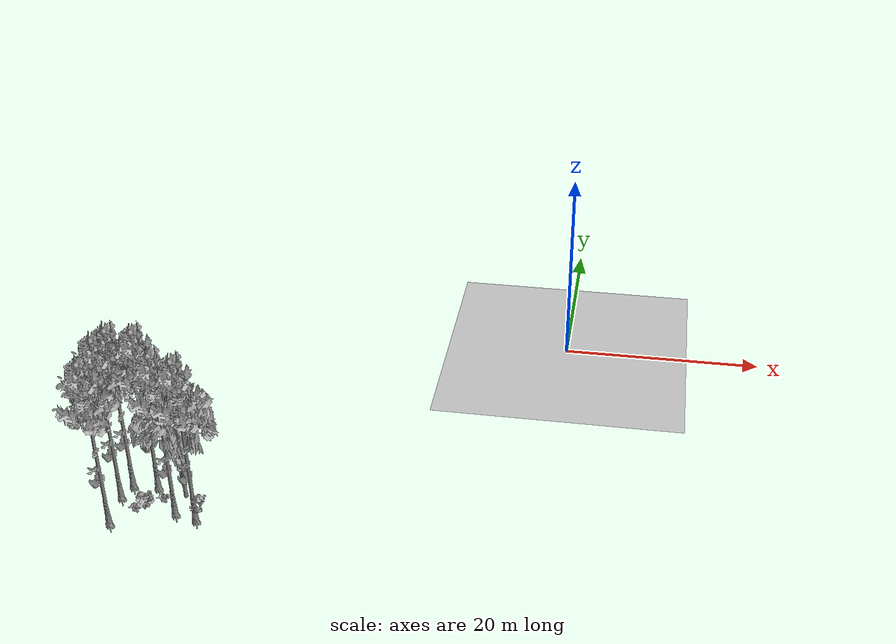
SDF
<sdf version="1.7">
 <world name="default">
  <model name="ground_plane">
   <static>1</static>
   <link name="link">
    <collision name="collision">
     <pose>-50 0 0 0 -0 0</pose>
     <geometry><plane><normal>0 0 1</normal><size>80 80</size></plane></geometry>
     <surface><contact><ode><min_depth>0.01</min_depth><max_vel>0</max_vel></ode></contact></surface>
    </collision>
    <visual name="grass">
     <cast_shadows>0</cast_shadows>
     <geometry>
      <mesh>
       <scale>0.46714285714285714 0.46714285714285714 0.1</scale>
       <uri>file://grass_plane/meshes/grass_plane.dae</uri>
      </mesh>
     </geometry>
    </visual>
   </link>
  </model>
  <model name="Tree 36">
   <static>1</static>
   <pose>-37.638411553506515 -28.30494602508135 0 1.57079 -0 0</pose>
   <link name="link">
    <collision name="collision">
     <geometry><mesh><scale>3.5 5 3.5</scale><uri>model://tree_9/meshes/tree_9.obj</uri></mesh></geometry>
    </collision>
    <visual name="visual">
     <geometry><mesh><scale>3.5 5 3.5</scale><uri>model://tree_9/meshes/tree_9.obj</uri></mesh></geometry>
    </visual>
   </link>
  </model>
  <model name="Tree 256">
   <static>1</static>
   <pose>-35.28440578913424 -28.160875932318284 0 1.57079 -0 0</pose>
   <link name="link">
    <collision name="collision">
     <geometry><mesh><scale>3.5 5 3.5</scale><uri>model://tree_9/meshes/tree_9.obj</uri></mesh></geometry>
    </collision>
    <visual name="visual">
     <geometry><mesh><scale>3.5 5 3.5</scale><uri>model://tree_9/meshes/tree_9.obj</uri></mesh></geometry>
    </visual>
   </link>
  </model>
  <model name="Tree 302">
   <static>1</static>
   <pose>-37.90011392359654 -33.57754406502387 0 1.57079 -0 0</pose>
   <link name="link">
    <collision name="collision">
     <geometry><mesh><scale>3.5 5 3.5</scale><uri>model://tree_9/meshes/tree_9.obj</uri></mesh></geometry>
    </collision>
    <visual name="visual">
     <geometry><mesh><scale>3.5 5 3.5</scale><uri>model://tree_9/meshes/tree_9.obj</uri></mesh></geometry>
    </visual>
   </link>
  </model>
  <model name="Tree 374">
   <static>1</static>
   <pose>-32.53455317914546 -31.410199852786597 0 1.57079 -0 0</pose>
   <link name="link">
    <collision name="collision">
     <geometry><mesh><scale>3.5 5 3.5</scale><uri>model://tree_9/meshes/tree_9.obj</uri></mesh></geometry>
    </collision>
    <visual name="visual">
     <geometry><mesh><scale>3.5 5 3.5</scale><uri>model://tree_9/meshes/tree_9.obj</uri></mesh></geometry>
    </visual>
   </link>
  </model>
  <model name="Tree 420">
   <static>1</static>
   <pose>-30.435906271621946 -31.982061194813156 0 1.57079 -0 0</pose>
   <link name="link">
    <collision name="collision">
     <geometry><mesh><scale>3.5 5 3.5</scale><uri>model://tree_9/meshes/tree_9.obj</uri></mesh></geometry>
    </collision>
    <visual name="visual">
     <geometry><mesh><scale>3.5 5 3.5</scale><uri>model://tree_9/meshes/tree_9.obj</uri></mesh></geometry>
    </visual>
   </link>
  </model>
  <model name="Tree 459">
   <static>1</static>
   <pose>-32.36695791713375 -29.146453293789072 0 1.57079 -0 0</pose>
   <link name="link">
    <collision name="collision">
     <geometry><mesh><scale>3.5 5 3.5</scale><uri>model://tree_2/meshes/tree_2.obj</uri></mesh></geometry>
    </collision>
    <visual name="visual">
     <geometry><mesh><scale>3.5 5 3.5</scale><uri>model://tree_2/meshes/tree_2.obj</uri></mesh></geometry>
    </visual>
   </link>
  </model>
  <model name="Tree 533">
   <static>1</static>
   <pose>-38.17459421310232 -29.961819559878453 0 1.57079 -0 0</pose>
   <link name="link">
    <collision name="collision">
     <geometry><mesh><scale>3.5 5 3.5</scale><uri>model://tree_9/meshes/tree_9.obj</uri></mesh></geometry>
    </collision>
    <visual name="visual">
     <geometry><mesh><scale>3.5 5 3.5</scale><uri>model://tree_9/meshes/tree_9.obj</uri></mesh></geometry>
    </visual>
   </link>
  </model>
  <model name="Bush 37">
   <static>1</static>
   <pose>-35.406207905359985 -31.353991606399738 0 1.57079 -0 0</pose>
   <link name="link">
    <collision name="collision">
     <geometry><mesh><scale>2 2 2</scale><uri>model://bush_1/meshes/bush_1.obj</uri></mesh></geometry>
     <surface><contact><collide_without_contact>false</collide_without_contact></contact></surface>
    </collision>
    <visual name="visual">
     <geometry><mesh><scale>2 2 2</scale><uri>model://bush_1/meshes/bush_1.obj</uri></mesh></geometry>
    </visual>
   </link>
  </model>
  <model name="Bush 242">
   <static>1</static>
   <pose>-30.274339073884676 -31.782894208312396 0 1.57079 -0 0</pose>
   <link name="link">
    <collision name="collision">
     <geometry><mesh><scale>2 2 2</scale><uri>model://bush_5/meshes/bush_5.obj</uri></mesh></geometry>
     <surface><contact><collide_without_contact>false</collide_without_contact></contact></surface>
    </collision>
    <visual name="visual">
     <geometry><mesh><scale>2 2 2</scale><uri>model://bush_5/meshes/bush_5.obj</uri></mesh></geometry>
    </visual>
   </link>
  </model>
  <model name="Bush 472">
   <static>1</static>
   <pose>-34.25248837692939 -29.70466740953735 0 1.57079 -0 0</pose>
   <link name="link">
    <collision name="collision">
     <geometry><mesh><scale>2 2 2</scale><uri>model://bush_2/meshes/bush_2.obj</uri></mesh></geometry>
     <surface><contact><collide_without_contact>false</collide_without_contact></contact></surface>
    </collision>
    <visual name="visual">
     <geometry><mesh><scale>2 2 2</scale><uri>model://bush_2/meshes/bush_2.obj</uri></mesh></geometry>
    </visual>
   </link>
  </model>
  <model name="Bush 504">
   <static>1</static>
   <pose>-30.573599362187686 -30.23353551315596 0 1.57079 -0 0</pose>
   <link name="link">
    <collision name="collision">
     <geometry><mesh><scale>2 2 2</scale><uri>model://bush_0/meshes/bush_0.obj</uri></mesh></geometry>
     <surface><contact><collide_without_contact>false</collide_without_contact></contact></surface>
    </collision>
    <visual name="visual">
     <geometry><mesh><scale>2 2 2</scale><uri>model://bush_0/meshes/bush_0.obj</uri></mesh></geometry>
    </visual>
   </link>
  </model>
  <model name="Bush 522">
   <static>1</static>
   <pose>-36.332418740328166 -31.35189256903068 0 1.57079 -0 0</pose>
   <link name="link">
    <collision name="collision">
     <geometry><mesh><scale>2 2 2</scale><uri>model://bush_2/meshes/bush_2.obj</uri></mesh></geometry>
     <surface><contact><collide_without_contact>false</collide_without_contact></contact></surface>
    </collision>
    <visual name="visual">
     <geometry><mesh><scale>2 2 2</scale><uri>model://bush_2/meshes/bush_2.obj</uri></mesh></geometry>
    </visual>
   </link>
  </model>
 </world>
</sdf>
